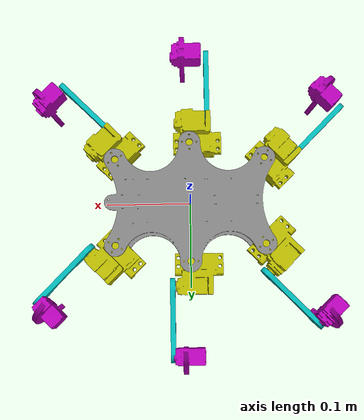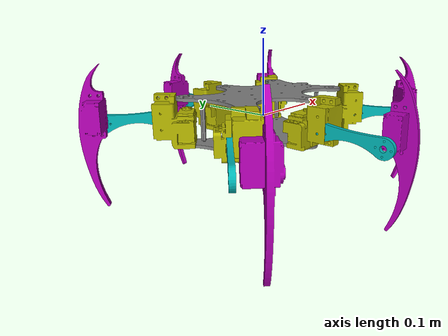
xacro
<?xml version="1.0"?>
<robot xmlns:xacro="http://ros.org/wiki/xacro" name="hexapod">

    <!-- Robot Frame -->

        <link name="base_link"/>

        <joint name="base_joint" type="fixed">
            <parent link="base_link"/>
            <child link="body"/>
            <origin xyz="0 0 0" rpy="0 0 0"/>
        </joint>

        <link name="body">

            <inertial>
                <mass value="0.8"/>
                <inertia ixx="0.007"  ixy="0"  ixz="0" iyy="0.012" iyz="0" izz="0.010" />
            </inertial>

            <visual>
                <origin xyz="0 0 -0.027" rpy="0 0 0"/>
                <geometry>
                        <mesh filename="package://hexapod_description/meshes/BODY.stl"/>
                </geometry>
                <material name="grey">
                        <color rgba="0.5 0.5 0.5 1"/>
                </material>
            </visual>

            <collision>
                <origin rpy="0 0 0" xyz="0 0 0"/>
                <geometry>
                    <mesh filename="package://hexapod_description/meshes/BODY_SIMPLIFIED.stl"/>
                </geometry>
            </collision>

        </link>

    <!-- Pi (used for angle calculations)-->
    <xacro:property name="pi" value="3.1415926535897931"/>

    <!-- Propriedade das Juntas [Joint Properties]-->
    <xacro:property name="joint_lower_limit" value="-${1.5}"/>
    <xacro:property name="joint_upper_limit" value="${1.5}"/>
    <xacro:property name="joint_effort" value="10000"/>
    <xacro:property name="joint_velocity" value="100"/>

    <!--Macro for legs-->
    <xacro:macro name="leg" params="side num x y angle inv">

    <!-- Construindo a perna [Building a leg]-->
    <joint name="leg_center_joint_${side}${num}" type="fixed">
        <origin xyz="${x} ${y} 0" rpy="0 0 0"/>
        <parent link="body"/>
        <child link="leg_center_${side}${num}"/>
    </joint>

    <link name="leg_center_${side}${num}"/>

    <joint name="coxa_joint_${side}${num}" type="revolute">
        <origin xyz="0 0 0" rpy="0 0 ${angle}"/>
        <parent link="leg_center_${side}${num}"/>
        <child link="coxa_${side}${num}"/>
        <axis xyz="0 0 -1"/>
        <limit lower="${joint_lower_limit}" upper="${joint_upper_limit}" effort="${joint_effort}" velocity="${joint_velocity}"/>
    </joint>

        <link name="coxa_${side}${num}">

            <inertial>
                <mass value="0.5"/>
                <inertia ixx="0.001"  ixy="0"  ixz="0" iyy="0" iyz="0" izz="0.001" />
            </inertial>

            <visual>
                <origin xyz="0 0 -0.025" rpy="0 0 0"/>
                <geometry>
                    <mesh filename="package://hexapod_description/meshes/COXA_${side}.stl"/>
                </geometry>
                <material name="">
                    <color rgba="0.7 0.7 0 1"/>
                    </material>
            </visual>

            <collision>
                <origin rpy="0 0 0" xyz="0 0 0"/>
                <geometry>
                    <mesh filename="package://hexapod_description/meshes/COXA_${side}_SIMPLIFIED.stl"/>
                </geometry>
            </collision>

        </link>

        <joint name="femur_joint_${side}${num}" type="revolute">
    		<origin xyz="0 ${inv*0.030} 0" rpy="0 0 0" />
    		<parent link="coxa_${side}${num}" />
    		<child link="femur_${side}${num}" />
    		<axis xyz="-1 0 0" />
    		<limit lower="-0.52" upper="0.61" effort="${joint_effort}" velocity="${joint_velocity}" />
  	    </joint>

        <link name="femur_${side}${num}">

            <inertial>
                <mass value="0.05"/>
                <inertia ixx="0"  ixy="0"  ixz="0" iyy="0" iyz="0" izz="0" />
            </inertial>

            <visual>
      			<origin xyz="${inv*0.022} 0 0" rpy="0 0 0" />
      			<geometry>
        			<mesh filename="package://hexapod_description/meshes/FEMUR_${side}.stl" />
      			</geometry>
      			<material name="">
        			<color rgba="0 0.7 0.7 1" />
      			</material>
    		</visual>

            <collision>
                <origin rpy="0 0 0" xyz="0 0 0"/>
                <geometry>
                    <mesh filename="package://hexapod_description/meshes/FEMUR_${side}_SIMPLIFIED.stl"/>
                </geometry>
            </collision>

        </link>

        <joint name="tibia_joint_${side}${num}" type="revolute">
    		<origin xyz="0 ${inv*0.08} 0" rpy="${-pi/2} 0 ${(1-inv)*pi/2}" />
    		<parent link="femur_${side}${num}" />
    		<child link="tibia_${side}${num}" />
    		<axis xyz="1 0 0" />
    		<limit lower="-0.87" upper="1.22" effort="${joint_effort}" velocity="${joint_velocity}" />
  	    </joint>

        <link name="tibia_${side}${num}">

            <inertial>
                <mass value="0.2"/>
                <inertia ixx="0"  ixy="0"  ixz="0" iyy="0" iyz="0" izz="0" />
            </inertial>

            <visual>
      			<origin xyz="${-inv*0.022} 0 0" rpy="${inv*pi/6+(1-inv)*pi/2}  ${(1-inv)*pi/2} 0" />
      			<geometry>
       				<mesh filename="package://hexapod_description/meshes/TIBIA_${side}.stl" />
      			</geometry>
      			<material name="">
        			<color rgba="0.7 0 0.7 1" />
      			</material>
    		</visual>

            <collision>
                <origin rpy="0 0 0" xyz="0 0 0"/>
                <geometry>
                    <mesh filename="package://hexapod_description/meshes/TIBIA_${side}_SIMPLIFIED.stl"/>
                </geometry>
            </collision>

        </link>

        <joint name="tibia_foot_joint_${side}${num}" type="fixed">
    		<origin xyz="0 0.110 0" rpy="0 0 0" />
    		<parent link="tibia_${side}${num}" />
    		<child link="tibia_foot_${side}${num}" />
  	    </joint>

  	    <link name="tibia_foot_${side}${num}" />

        </xacro:macro>

        <xacro:leg side="R" num="1" x="0.0875" 	    y="0.050175" 	angle="${pi*3/4}"     inv="-1"/>
	    <xacro:leg side="R" num="2" x="0" 		    y="0.070" 	    angle="${pi}"         inv="-1"/>
	    <xacro:leg side="R" num="3" x="-0.0875"   	y="0.050175" 	angle="${pi*5/4}"     inv="-1"/>
	    <xacro:leg side="L" num="1" x="0.0875" 	    y="-0.050175"	angle="-${pi*3/4}"    inv="1"/>
	    <xacro:leg side="L" num="2" x="0" 		    y="-0.070"	    angle="-${pi}"        inv="1"/>
	    <xacro:leg side="L" num="3" x="-0.0875" 	y="-0.050175"   angle="-${pi*5/4}"    inv="1"/>

</robot>
